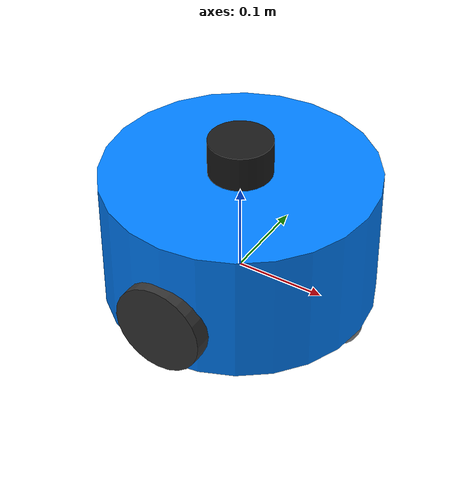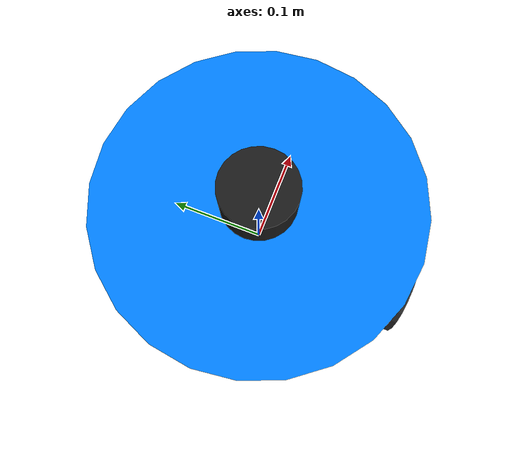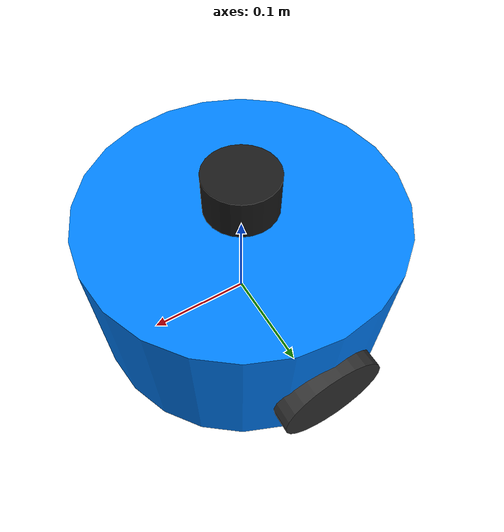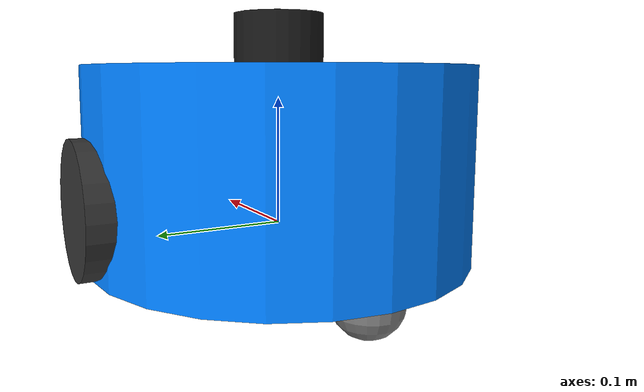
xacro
<?xml version="1.0"?>
<robot name="my_robot" xmlns:xacro="http://www.ros.org/wiki/xacro">

  <!-- ===================== Properties ===================== -->
  <xacro:property name="base_radius"  value="0.15"/>
  <xacro:property name="base_height"  value="0.15"/>
  <xacro:property name="base_mass"    value="5.0"/>

  <xacro:property name="wheel_radius" value="0.05"/>
  <xacro:property name="wheel_width"  value="0.04"/>
  <xacro:property name="wheel_mass"   value="0.5"/>
  <xacro:property name="wheel_separation" value="0.28"/>

  <xacro:property name="caster_radius" value="0.025"/>
  <xacro:property name="caster_mass"   value="0.1"/>

  <xacro:property name="lidar_radius"  value="0.035"/>
  <xacro:property name="lidar_height"  value="0.04"/>
  <xacro:property name="lidar_mass"    value="0.1"/>

  <!-- ===================== Inertia Macros ===================== -->
  <xacro:macro name="inertial_cylinder" params="mass radius length *origin">
    <inertial>
      <xacro:insert_block name="origin"/>
      <mass value="${mass}"/>
      <inertia
        ixx="${(1/12) * mass * (3 * radius * radius + length * length)}"
        ixy="0.0" ixz="0.0"
        iyy="${(1/12) * mass * (3 * radius * radius + length * length)}"
        iyz="0.0"
        izz="${(1/2) * mass * radius * radius}"/>
    </inertial>
  </xacro:macro>

  <xacro:macro name="inertial_sphere" params="mass radius *origin">
    <inertial>
      <xacro:insert_block name="origin"/>
      <mass value="${mass}"/>
      <inertia
        ixx="${(2/5) * mass * radius * radius}"
        ixy="0.0" ixz="0.0"
        iyy="${(2/5) * mass * radius * radius}"
        iyz="0.0"
        izz="${(2/5) * mass * radius * radius}"/>
    </inertial>
  </xacro:macro>

  <!-- ===================== Base Link ===================== -->
  <link name="base_footprint"/>

  <joint name="base_footprint_joint" type="fixed">
    <parent link="base_footprint"/>
    <child link="base_link"/>
    <origin xyz="0 0 ${wheel_radius}" rpy="0 0 0"/>
  </joint>

  <link name="base_link">
    <visual>
      <geometry>
        <cylinder radius="${base_radius}" length="${base_height}"/>
      </geometry>
      <material name="blue">
        <color rgba="0.0 0.5 1.0 1.0"/>
      </material>
    </visual>
    <collision>
      <geometry>
        <cylinder radius="${base_radius}" length="${base_height}"/>
      </geometry>
    </collision>
    <xacro:inertial_cylinder mass="${base_mass}" radius="${base_radius}" length="${base_height}">
      <origin xyz="0 0 0" rpy="0 0 0"/>
    </xacro:inertial_cylinder>
  </link>

  <!-- ===================== Wheel Macro ===================== -->
  <xacro:macro name="wheel" params="name y_reflect">
    <link name="${name}_wheel_link">
      <visual>
        <geometry>
          <cylinder radius="${wheel_radius}" length="${wheel_width}"/>
        </geometry>
        <material name="dark_grey">
          <color rgba="0.2 0.2 0.2 1.0"/>
        </material>
      </visual>
      <collision>
        <geometry>
          <cylinder radius="${wheel_radius}" length="${wheel_width}"/>
        </geometry>
      </collision>
      <xacro:inertial_cylinder mass="${wheel_mass}" radius="${wheel_radius}" length="${wheel_width}">
        <origin xyz="0 0 0" rpy="0 0 0"/>
      </xacro:inertial_cylinder>
    </link>

    <joint name="${name}_wheel_joint" type="continuous">
      <parent link="base_link"/>
      <child link="${name}_wheel_link"/>
      <origin xyz="0 ${y_reflect * wheel_separation / 2} ${-base_height / 2 + wheel_radius}" rpy="${-pi/2} 0 0"/>
      <axis xyz="0 0 1"/>
      <dynamics damping="0.01" friction="0.1"/>
    </joint>
  </xacro:macro>

  <xacro:wheel name="left"  y_reflect="1"/>
  <xacro:wheel name="right" y_reflect="-1"/>

  <!-- ===================== Caster Wheels ===================== -->
  <xacro:macro name="caster" params="name x_offset">
    <link name="${name}_caster_link">
      <visual>
        <geometry>
          <sphere radius="${caster_radius}"/>
        </geometry>
        <material name="grey">
          <color rgba="0.5 0.5 0.5 1.0"/>
        </material>
      </visual>
      <collision>
        <geometry>
          <sphere radius="${caster_radius}"/>
        </geometry>
      </collision>
      <xacro:inertial_sphere mass="${caster_mass}" radius="${caster_radius}">
        <origin xyz="0 0 0" rpy="0 0 0"/>
      </xacro:inertial_sphere>
    </link>

    <joint name="${name}_caster_joint" type="fixed">
      <parent link="base_link"/>
      <child link="${name}_caster_link"/>
      <origin xyz="${x_offset} 0 ${-base_height / 2}" rpy="0 0 0"/>
    </joint>
  </xacro:macro>

  <xacro:caster name="front" x_offset="${base_radius - caster_radius}"/>
  <xacro:caster name="rear"  x_offset="${-(base_radius - caster_radius)}"/>

  <!-- ===================== Lidar ===================== -->
  <link name="lidar_link">
    <visual>
      <geometry>
        <cylinder radius="${lidar_radius}" length="${lidar_height}"/>
      </geometry>
      <material name="black">
        <color rgba="0.1 0.1 0.1 1.0"/>
      </material>
    </visual>
    <collision>
      <geometry>
        <cylinder radius="${lidar_radius}" length="${lidar_height}"/>
      </geometry>
    </collision>
    <xacro:inertial_cylinder mass="${lidar_mass}" radius="${lidar_radius}" length="${lidar_height}">
      <origin xyz="0 0 0" rpy="0 0 0"/>
    </xacro:inertial_cylinder>
  </link>

  <joint name="lidar_joint" type="fixed">
    <parent link="base_link"/>
    <child link="lidar_link"/>
    <origin xyz="0 0 ${base_height / 2 + lidar_height / 2}" rpy="0 0 0"/>
  </joint>

  <!-- ===================== IMU ===================== -->
  <link name="imu_link">
    <visual>
      <geometry>
        <box size="0.02 0.02 0.01"/>
      </geometry>
      <material name="orange">
        <color rgba="1.0 0.5 0.0 1.0"/>
      </material>
    </visual>
    <inertial>
      <mass value="0.01"/>
      <inertia ixx="1e-6" ixy="0" ixz="0" iyy="1e-6" iyz="0" izz="1e-6"/>
    </inertial>
  </link>

  <joint name="imu_joint" type="fixed">
    <parent link="base_link"/>
    <child link="imu_link"/>
    <origin xyz="0 0 0" rpy="0 0 0"/>
  </joint>

  <!-- ===================== Gazebo Plugins ===================== -->
  <xacro:include filename="$(find my_robot_description)/urdf/my_robot_gazebo.xacro"/>

</robot>
